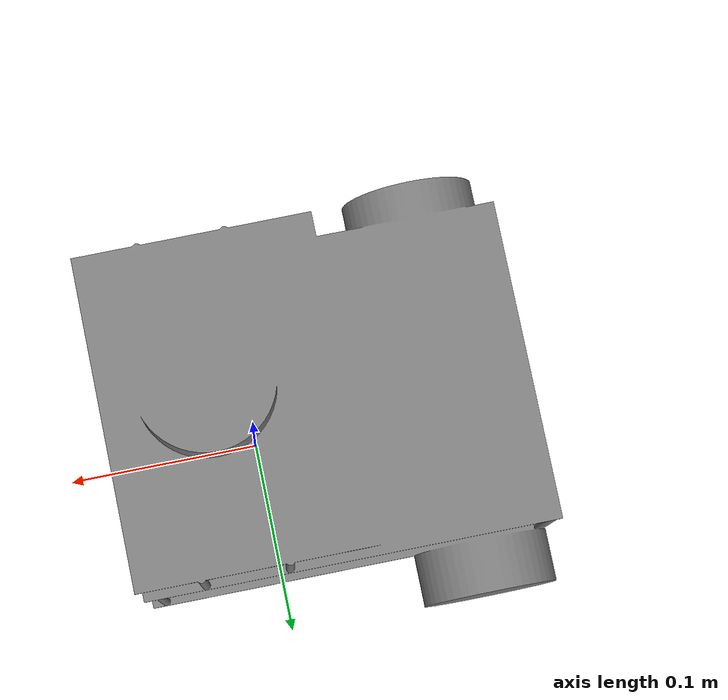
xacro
<?xml version="1.0"?>
<robot name="KWJBot" xmlns:xacro="http://ros.org/wiki/xacro">
    <xacro:include filename="$(find kwj_description)/urdf/kwj.gazebo.xacro"/>

    <link name="base_footprint"/>

    <joint name="base_joint" type="fixed">
       <parent link="base_footprint"/>
       <child link="base_link"/>
       <origin xyz="0 0 0.065" rpy="0 0 0"/>
    </joint>

  <link name="base_link">
    <inertial>
      <origin xyz="0 0 0" rpy="0 0 0"/>
      <mass value="1.0" />
      <inertia ixx="8.7002718e-03" ixy="-4.7576583e-05" ixz="1.1160499e-04" iyy="8.6195418e-03" iyz="-3.5422299e-06" izz="1.4612727e-02" />
    </inertial>

    <collision>
      <origin xyz="-0.064 0 0.047" rpy="0 0 0"/>
      <geometry>
        <box size="0.155 0.2 0.25"/>
      </geometry>
    </collision>

    <visual>
      <origin xyz="-0.10 0 0" rpy="0 0 0"/>
      <geometry>
        <mesh filename="package://kwj_description/meshes/new_total_180.stl" scale="1.0 1.0 1.0"/>
      </geometry>
      <material name="grey">
        <color rgba="0.5 0.5 0.5 1"/>
      </material>
    </visual>
  </link>

</robot>
